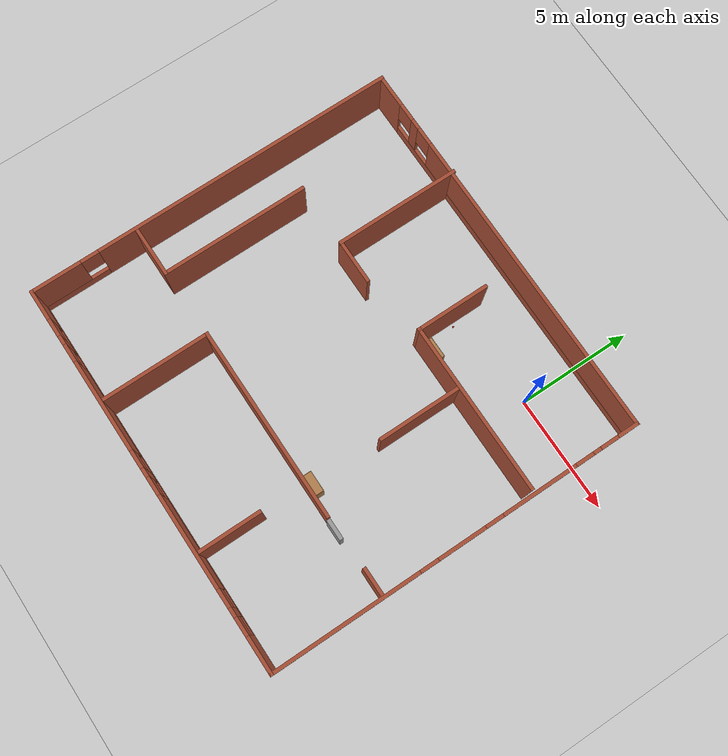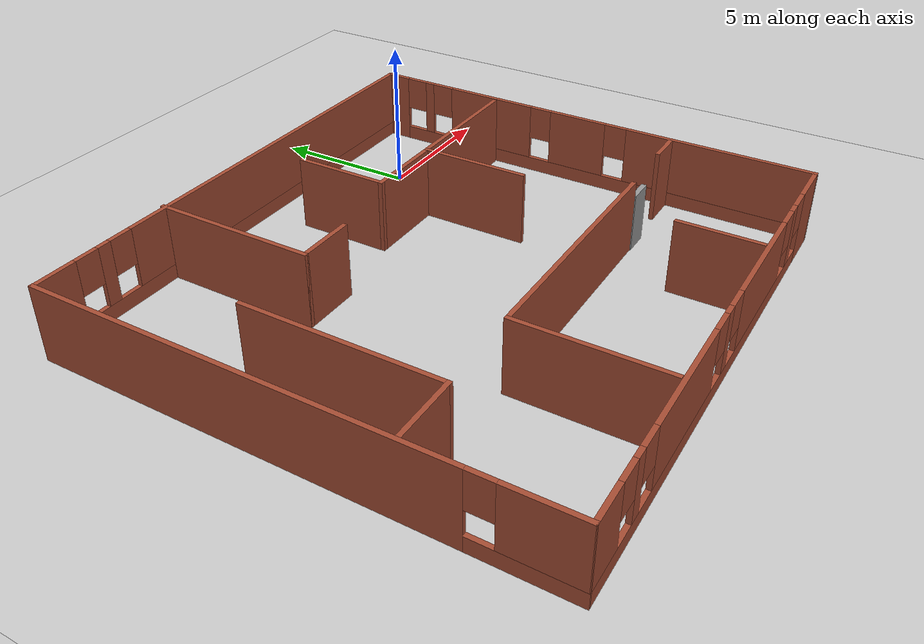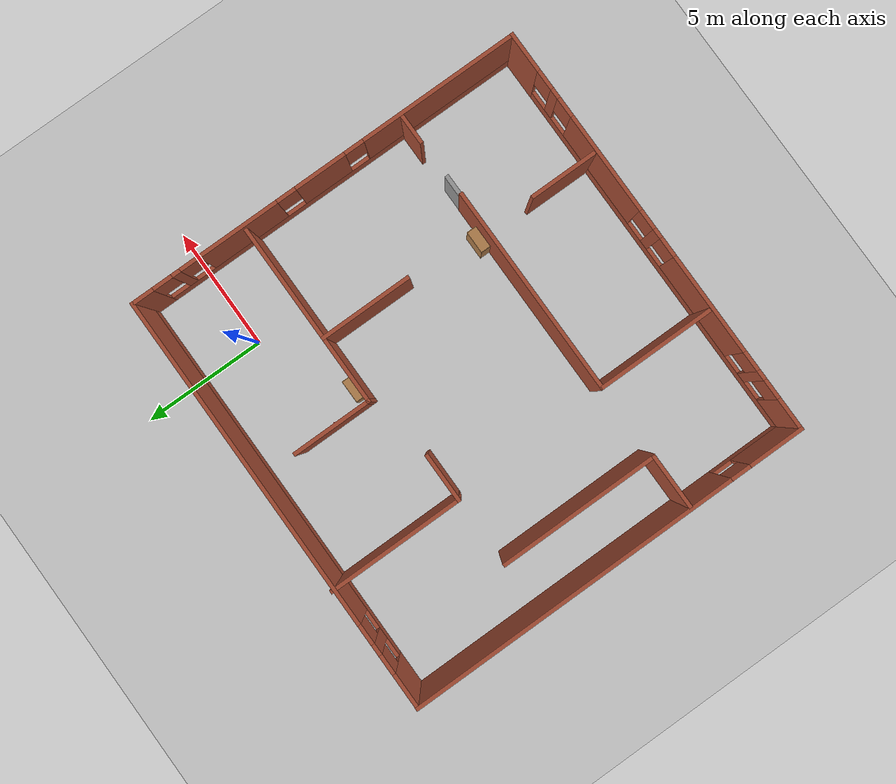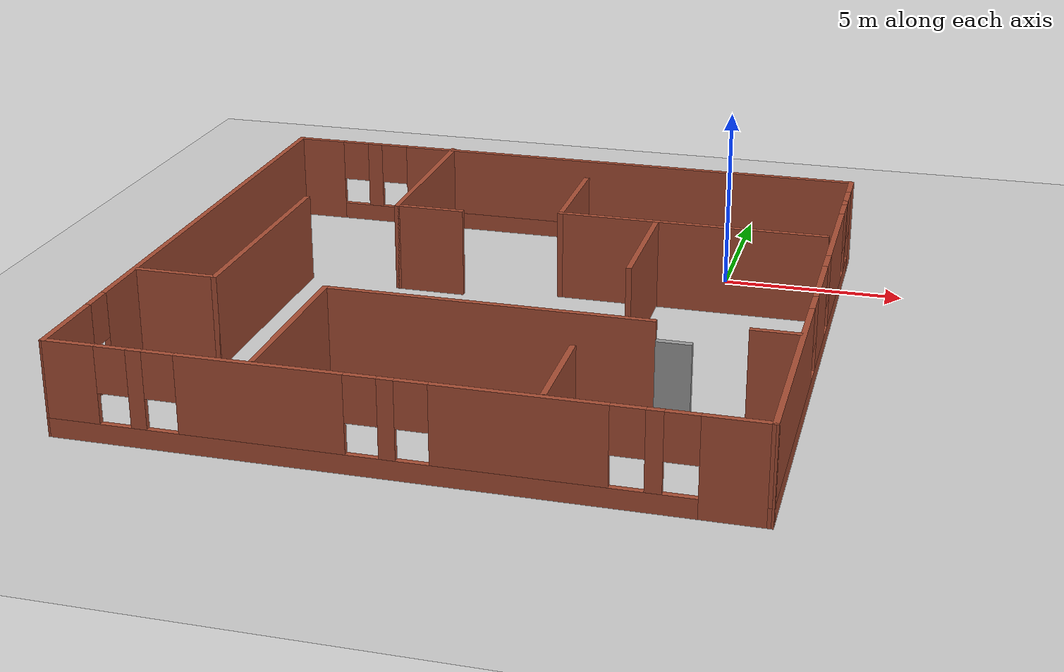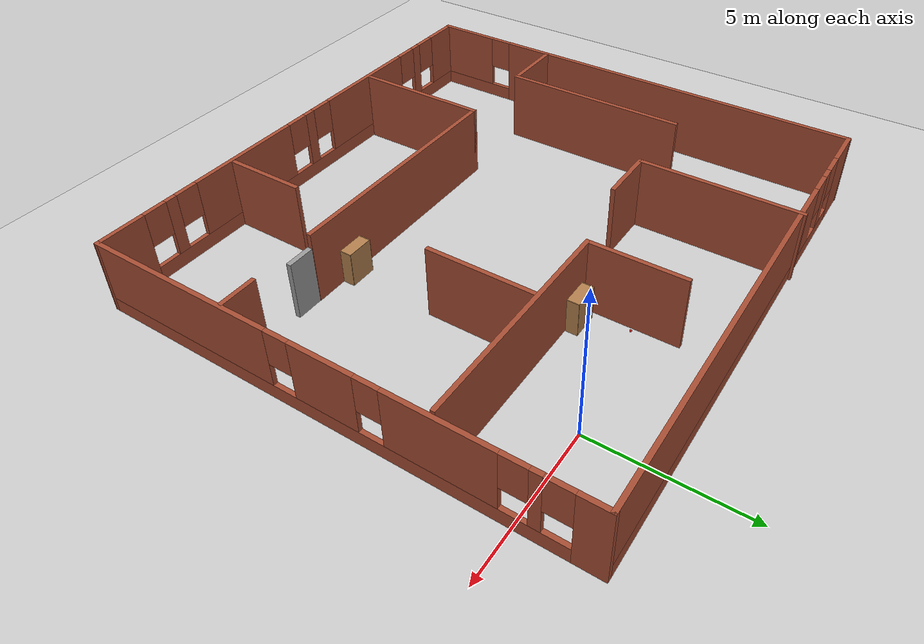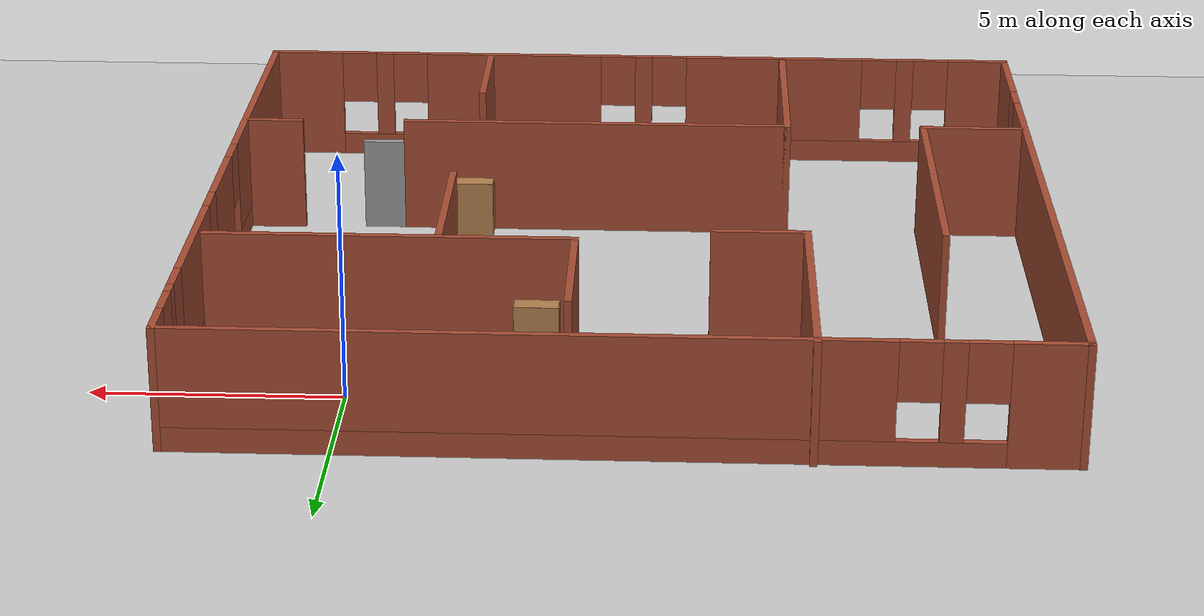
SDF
<sdf version="1.7">
 <world name="default">
  <light name="sun" type="directional">
   <pose>0 0 10 0 -0 0</pose>
   <diffuse>0.8 0.8 0.8 1</diffuse>
   <specular>0.2 0.2 0.2 1</specular>
   <attenuation>
    <range>1000</range>
    <constant>0.9</constant>
    <linear>0.01</linear>
    <quadratic>0.001</quadratic>
   </attenuation>
   <direction>-0.5 0.1 -0.9</direction>
   <spot><inner_angle>0</inner_angle><outer_angle>0</outer_angle><falloff>0</falloff></spot>
  </light>
  <gravity>0 0 -9.8</gravity>
  <magnetic_field>6e-06 2.3e-05 -4.2e-05</magnetic_field>
  <atmosphere type="adiabatic"/>
  <physics type="ode">
   <max_step_size>0.001</max_step_size>
   <real_time_factor>1</real_time_factor>
   <real_time_update_rate>1000</real_time_update_rate>
  </physics>
  <scene><ambient>0.4 0.4 0.4 1</ambient><background>0.7 0.7 0.7 1</background><shadows>1</shadows></scene>
  <audio><device>default</device></audio>
  <spherical_coordinates>
   <surface_model>EARTH_WGS84</surface_model>
   <latitude_deg>0</latitude_deg>
   <longitude_deg>0</longitude_deg>
   <elevation>0</elevation>
   <heading_deg>0</heading_deg>
  </spherical_coordinates>
  <model name="house">
   <pose>-5.33863 -5.68981 0 0 -0 0</pose>
   <link name="Door_0">
    <collision name="Door_0_Collision">
     <geometry><box><size>0.9 0.17 2</size></box></geometry>
     <pose>0 0 1 0 -0 0</pose>
    </collision>
    <visual name="Door_0_Visual">
     <pose>0 0 1 0 -0 0</pose>
     <geometry><box><size>0.9 0.17 2</size></box></geometry>
     <material>
      <script><uri>file://media/materials/scripts/gazebo.material</uri><name>Gazebo/Grey</name></script>
     </material>
    </visual>
    <pose>5.4969 -3.46946 0 0 -0 0</pose>
   </link>
   <link name="Wall_0">
    <pose>-8.55105 -0.029821 0 0 -0 -1.5708</pose>
    <visual name="Wall_0_Visual_0">
     <pose>-1.53541 0 1.25 0 -0 0</pose>
     <geometry><box><size>13.4292 0.15 2.5</size></box></geometry>
     <material>
      <script><uri>file://media/materials/scripts/gazebo.material</uri><name>Gazebo/Bricks</name></script>
      <ambient>1 1 1 1</ambient>
     </material>
     <meta><layer>0</layer></meta>
    </visual>
    <collision name="Wall_0_Collision_0">
     <geometry><box><size>13.4292 0.15 2.5</size></box></geometry>
     <pose>-1.53541 0 1.25 0 -0 0</pose>
    </collision>
    <visual name="Wall_0_Visual_1">
     <pose>6.71459 0 0.25 0 -0 0</pose>
     <geometry><box><size>3.07082 0.15 0.5</size></box></geometry>
     <material>
      <script><uri>file://media/materials/scripts/gazebo.material</uri><name>Gazebo/Bricks</name></script>
      <ambient>1 1 1 1</ambient>
     </material>
     <meta><layer>0</layer></meta>
    </visual>
    <collision name="Wall_0_Collision_1">
     <geometry><box><size>3.07082 0.15 0.5</size></box></geometry>
     <pose>6.71459 0 0.25 0 -0 0</pose>
    </collision>
    <visual name="Wall_0_Visual_2">
     <pose>7.11459 0 1.5 0 -0 0</pose>
     <geometry><box><size>2.27082 0.15 2</size></box></geometry>
     <material>
      <script><uri>file://media/materials/scripts/gazebo.material</uri><name>Gazebo/Bricks</name></script>
      <ambient>1 1 1 1</ambient>
     </material>
     <meta><layer>0</layer></meta>
    </visual>
    <collision name="Wall_0_Collision_2">
     <geometry><box><size>2.27082 0.15 2</size></box></geometry>
     <pose>7.11459 0 1.5 0 -0 0</pose>
    </collision>
    <visual name="Wall_0_Visual_3">
     <pose>5.57918 0 1.9 0 -0 0</pose>
     <geometry><box><size>0.8 0.15 1.2</size></box></geometry>
     <material>
      <script><uri>file://media/materials/scripts/gazebo.material</uri><name>Gazebo/Bricks</name></script>
      <ambient>1 1 1 1</ambient>
     </material>
     <meta><layer>0</layer></meta>
    </visual>
    <collision name="Wall_0_Collision_3">
     <geometry><box><size>0.8 0.15 1.2</size></box></geometry>
     <pose>5.57918 0 1.9 0 -0 0</pose>
    </collision>
   </link>
   <link name="Wall_11">
    <collision name="Wall_11_Collision">
     <geometry><box><size>2.75 0.15 2.5</size></box></geometry>
     <pose>0 0 1.25 0 -0 0</pose>
    </collision>
    <visual name="Wall_11_Visual">
     <pose>0 0 1.25 0 -0 0</pose>
     <geometry><box><size>2.75 0.15 2.5</size></box></geometry>
     <material>
      <script><uri>file://media/materials/scripts/gazebo.material</uri><name>Gazebo/Bricks</name></script>
      <ambient>1 1 1 1</ambient>
     </material>
     <meta><layer>0</layer></meta>
    </visual>
    <pose>3.45894 -6.74753 0 0 -0 1.5708</pose>
   </link>
   <link name="Wall_13">
    <collision name="Wall_13_Collision">
     <geometry><box><size>2.25 0.15 2.5</size></box></geometry>
     <pose>0 0 1.25 0 -0 0</pose>
    </collision>
    <visual name="Wall_13_Visual">
     <pose>0 0 1.25 0 -0 0</pose>
     <geometry><box><size>2.25 0.15 2.5</size></box></geometry>
     <material>
      <script><uri>file://media/materials/scripts/gazebo.material</uri><name>Gazebo/Bricks</name></script>
      <ambient>1 1 1 1</ambient>
     </material>
     <meta><layer>0</layer></meta>
    </visual>
    <pose>-7.38906 -3.49353 0 0 -0 3.14159</pose>
   </link>
   <link name="Wall_18">
    <collision name="Wall_18_Collision">
     <geometry><box><size>1.25 0.15 2.5</size></box></geometry>
     <pose>0 0 1.25 0 -0 0</pose>
    </collision>
    <visual name="Wall_18_Visual">
     <pose>0 0 1.25 0 -0 0</pose>
     <geometry><box><size>1.25 0.15 2.5</size></box></geometry>
     <material>
      <script><uri>file://media/materials/scripts/gazebo.material</uri><name>Gazebo/Bricks</name></script>
      <ambient>1 1 1 1</ambient>
     </material>
     <meta><layer>0</layer></meta>
    </visual>
    <pose>7.89518 -3.36552 0 0 -0 3.14159</pose>
   </link>
   <link name="Wall_20">
    <collision name="Wall_20_Collision">
     <geometry><box><size>7.5 0.15 2.5</size></box></geometry>
     <pose>0 0 1.25 0 -0 0</pose>
    </collision>
    <visual name="Wall_20_Visual">
     <pose>0 0 1.25 0 -0 0</pose>
     <geometry><box><size>7.5 0.15 2.5</size></box></geometry>
     <material>
      <script><uri>file://media/materials/scripts/gazebo.material</uri><name>Gazebo/Bricks</name></script>
      <ambient>1 1 1 1</ambient>
     </material>
     <meta><layer>0</layer></meta>
    </visual>
    <pose>4.66583 3.41708 0 0 -0 3.14159</pose>
   </link>
   <link name="Wall_21">
    <collision name="Wall_21_Collision">
     <geometry><box><size>3.25 0.15 2.5</size></box></geometry>
     <pose>0 0 1.25 0 -0 0</pose>
    </collision>
    <visual name="Wall_21_Visual">
     <pose>0 0 1.25 0 -0 0</pose>
     <geometry><box><size>3.25 0.15 2.5</size></box></geometry>
     <material>
      <script><uri>file://media/materials/scripts/gazebo.material</uri><name>Gazebo/Bricks</name></script>
      <ambient>1 1 1 1</ambient>
     </material>
     <meta><layer>0</layer></meta>
    </visual>
    <pose>0.990832 4.96708 0 0 -0 1.5708</pose>
   </link>
   <link name="Wall_23">
    <collision name="Wall_23_Collision">
     <geometry><box><size>5.5 0.15 2.5</size></box></geometry>
     <pose>0 0 1.25 0 -0 0</pose>
    </collision>
    <visual name="Wall_23_Visual">
     <pose>0 0 1.25 0 -0 0</pose>
     <geometry><box><size>5.5 0.15 2.5</size></box></geometry>
     <material>
      <script><uri>file://media/materials/scripts/gazebo.material</uri><name>Gazebo/Bricks</name></script>
      <ambient>1 1 1 1</ambient>
     </material>
     <meta><layer>0</layer></meta>
    </visual>
    <pose>-3.60699 5.54208 0 0 -0 -1.5708</pose>
   </link>
   <link name="Wall_24">
    <collision name="Wall_24_Collision">
     <geometry><box><size>2 0.15 2.5</size></box></geometry>
     <pose>0 0 1.25 0 -0 0</pose>
    </collision>
    <visual name="Wall_24_Visual">
     <pose>0 0 1.25 0 -0 0</pose>
     <geometry><box><size>2 0.15 2.5</size></box></geometry>
     <material>
      <script><uri>file://media/materials/scripts/gazebo.material</uri><name>Gazebo/Bricks</name></script>
      <ambient>1 1 1 1</ambient>
     </material>
     <meta><layer>0</layer></meta>
    </visual>
    <pose>-2.68199 2.86708 0 0 -0 0</pose>
   </link>
   <link name="Wall_26">
    <collision name="Wall_26_Collision">
     <geometry><box><size>6.5 0.15 2.5</size></box></geometry>
     <pose>0 0 1.25 0 -0 0</pose>
    </collision>
    <visual name="Wall_26_Visual">
     <pose>0 0 1.25 0 -0 0</pose>
     <geometry><box><size>6.5 0.15 2.5</size></box></geometry>
     <material>
      <script><uri>file://media/materials/scripts/gazebo.material</uri><name>Gazebo/Bricks</name></script>
      <ambient>1 1 1 1</ambient>
     </material>
     <meta><layer>0</layer></meta>
    </visual>
    <pose>-6.33906 -0.318534 0 0 -0 1.5708</pose>
   </link>
   <link name="Wall_28">
    <collision name="Wall_28_Collision">
     <geometry><box><size>3.75 0.15 2.5</size></box></geometry>
     <pose>0 0 1.25 0 -0 0</pose>
    </collision>
    <visual name="Wall_28_Visual">
     <pose>0 0 1.25 0 -0 0</pose>
     <geometry><box><size>3.75 0.15 2.5</size></box></geometry>
     <material>
      <script><uri>file://media/materials/scripts/gazebo.material</uri><name>Gazebo/Bricks</name></script>
      <ambient>1 1 1 1</ambient>
     </material>
     <meta><layer>0</layer></meta>
    </visual>
    <pose>3.69735 1.61708 0 0 -0 -1.5708</pose>
   </link>
   <link name="Wall_3">
    <pose>0.001046 8.13297 0 0 -0 0</pose>
    <visual name="Wall_3_Visual_0">
     <pose>-7.88174 0 1.25 0 -0 0</pose>
     <geometry><box><size>1.48653 0.15 2.5</size></box></geometry>
     <material>
      <script><uri>file://media/materials/scripts/gazebo.material</uri><name>Gazebo/Bricks</name></script>
      <ambient>1 1 1 1</ambient>
     </material>
     <meta><layer>0</layer></meta>
    </visual>
    <collision name="Wall_3_Collision_0">
     <geometry><box><size>1.48653 0.15 2.5</size></box></geometry>
     <pose>-7.88174 0 1.25 0 -0 0</pose>
    </collision>
    <visual name="Wall_3_Visual_1">
     <pose>0.743262 0 0.25 0 -0 0</pose>
     <geometry><box><size>15.7635 0.15 0.5</size></box></geometry>
     <material>
      <script><uri>file://media/materials/scripts/gazebo.material</uri><name>Gazebo/Bricks</name></script>
      <ambient>1 1 1 1</ambient>
     </material>
     <meta><layer>0</layer></meta>
    </visual>
    <collision name="Wall_3_Collision_1">
     <geometry><box><size>15.7635 0.15 0.5</size></box></geometry>
     <pose>0.743262 0 0.25 0 -0 0</pose>
    </collision>
    <visual name="Wall_3_Visual_2">
     <pose>-6.11239 0 1.5 0 -0 0</pose>
     <geometry><box><size>0.452174 0.15 2</size></box></geometry>
     <material>
      <script><uri>file://media/materials/scripts/gazebo.material</uri><name>Gazebo/Bricks</name></script>
      <ambient>1 1 1 1</ambient>
     </material>
     <meta><layer>0</layer></meta>
    </visual>
    <collision name="Wall_3_Collision_2">
     <geometry><box><size>0.452174 0.15 2</size></box></geometry>
     <pose>-6.11239 0 1.5 0 -0 0</pose>
    </collision>
    <visual name="Wall_3_Visual_3">
     <pose>1.76935 0 1.5 0 -0 0</pose>
     <geometry><box><size>13.7113 0.15 2</size></box></geometry>
     <material>
      <script><uri>file://media/materials/scripts/gazebo.material</uri><name>Gazebo/Bricks</name></script>
      <ambient>1 1 1 1</ambient>
     </material>
     <meta><layer>0</layer></meta>
    </visual>
    <collision name="Wall_3_Collision_3">
     <geometry><box><size>13.7113 0.15 2</size></box></geometry>
     <pose>1.76935 0 1.5 0 -0 0</pose>
    </collision>
    <visual name="Wall_3_Visual_4">
     <pose>-6.73848 0 1.9 0 -0 0</pose>
     <geometry><box><size>0.8 0.15 1.2</size></box></geometry>
     <material>
      <script><uri>file://media/materials/scripts/gazebo.material</uri><name>Gazebo/Bricks</name></script>
      <ambient>1 1 1 1</ambient>
     </material>
     <meta><layer>0</layer></meta>
    </visual>
    <collision name="Wall_3_Collision_4">
     <geometry><box><size>0.8 0.15 1.2</size></box></geometry>
     <pose>-6.73848 0 1.9 0 -0 0</pose>
    </collision>
    <visual name="Wall_3_Visual_5">
     <pose>-5.4863 0 1.9 0 -0 0</pose>
     <geometry><box><size>0.8 0.15 1.2</size></box></geometry>
     <material>
      <script><uri>file://media/materials/scripts/gazebo.material</uri><name>Gazebo/Bricks</name></script>
      <ambient>1 1 1 1</ambient>
     </material>
     <meta><layer>0</layer></meta>
    </visual>
    <collision name="Wall_3_Collision_5">
     <geometry><box><size>0.8 0.15 1.2</size></box></geometry>
     <pose>-5.4863 0 1.9 0 -0 0</pose>
    </collision>
   </link>
   <link name="Wall_5">
    <pose>8.55105 -0.04203 0 0 -0 -1.5708</pose>
    <visual name="Wall_5_Visual_0">
     <pose>-7.7763 0 1.25 0 -0 0</pose>
     <geometry><box><size>0.947407 0.15 2.5</size></box></geometry>
     <material>
      <script><uri>file://media/materials/scripts/gazebo.material</uri><name>Gazebo/Bricks</name></script>
      <ambient>1 1 1 1</ambient>
     </material>
     <meta><layer>0</layer></meta>
    </visual>
    <collision name="Wall_5_Collision_0">
     <geometry><box><size>0.947407 0.15 2.5</size></box></geometry>
     <pose>-7.7763 0 1.25 0 -0 0</pose>
    </collision>
    <visual name="Wall_5_Visual_1">
     <pose>0.473704 0 0.25 0 -0 0</pose>
     <geometry><box><size>15.5526 0.15 0.5</size></box></geometry>
     <material>
      <script><uri>file://media/materials/scripts/gazebo.material</uri><name>Gazebo/Bricks</name></script>
      <ambient>1 1 1 1</ambient>
     </material>
     <meta><layer>0</layer></meta>
    </visual>
    <collision name="Wall_5_Collision_1">
     <geometry><box><size>15.5526 0.15 0.5</size></box></geometry>
     <pose>0.473704 0 0.25 0 -0 0</pose>
    </collision>
    <visual name="Wall_5_Visual_2">
     <pose>-6.32868 0 1.5 0 -0 0</pose>
     <geometry><box><size>0.347826 0.15 2</size></box></geometry>
     <material>
      <script><uri>file://media/materials/scripts/gazebo.material</uri><name>Gazebo/Bricks</name></script>
      <ambient>1 1 1 1</ambient>
     </material>
     <meta><layer>0</layer></meta>
    </visual>
    <collision name="Wall_5_Collision_2">
     <geometry><box><size>0.347826 0.15 2</size></box></geometry>
     <pose>-6.32868 0 1.5 0 -0 0</pose>
    </collision>
    <visual name="Wall_5_Visual_3">
     <pose>-3.6856 0 1.5 0 -0 0</pose>
     <geometry><box><size>3.33834 0.15 2</size></box></geometry>
     <material>
      <script><uri>file://media/materials/scripts/gazebo.material</uri><name>Gazebo/Bricks</name></script>
      <ambient>1 1 1 1</ambient>
     </material>
     <meta><layer>0</layer></meta>
    </visual>
    <collision name="Wall_5_Collision_3">
     <geometry><box><size>3.33834 0.15 2</size></box></geometry>
     <pose>-3.6856 0 1.5 0 -0 0</pose>
    </collision>
    <visual name="Wall_5_Visual_4">
     <pose>-0.158458 0 1.5 0 -0 0</pose>
     <geometry><box><size>2.11594 0.15 2</size></box></geometry>
     <material>
      <script><uri>file://media/materials/scripts/gazebo.material</uri><name>Gazebo/Bricks</name></script>
      <ambient>1 1 1 1</ambient>
     </material>
     <meta><layer>0</layer></meta>
    </visual>
    <collision name="Wall_5_Collision_4">
     <geometry><box><size>2.11594 0.15 2</size></box></geometry>
     <pose>-0.158458 0 1.5 0 -0 0</pose>
    </collision>
    <visual name="Wall_5_Visual_5">
     <pose>4.97476 0 1.5 0 -0 0</pose>
     <geometry><box><size>6.55049 0.15 2</size></box></geometry>
     <material>
      <script><uri>file://media/materials/scripts/gazebo.material</uri><name>Gazebo/Bricks</name></script>
      <ambient>1 1 1 1</ambient>
     </material>
     <meta><layer>0</layer></meta>
    </visual>
    <collision name="Wall_5_Collision_5">
     <geometry><box><size>6.55049 0.15 2</size></box></geometry>
     <pose>4.97476 0 1.5 0 -0 0</pose>
    </collision>
    <visual name="Wall_5_Visual_6">
     <pose>-6.90259 0 1.9 0 -0 0</pose>
     <geometry><box><size>0.8 0.15 1.2</size></box></geometry>
     <material>
      <script><uri>file://media/materials/scripts/gazebo.material</uri><name>Gazebo/Bricks</name></script>
      <ambient>1 1 1 1</ambient>
     </material>
     <meta><layer>0</layer></meta>
    </visual>
    <collision name="Wall_5_Collision_6">
     <geometry><box><size>0.8 0.15 1.2</size></box></geometry>
     <pose>-6.90259 0 1.9 0 -0 0</pose>
    </collision>
    <visual name="Wall_5_Visual_7">
     <pose>-5.75477 0 1.9 0 -0 0</pose>
     <geometry><box><size>0.8 0.15 1.2</size></box></geometry>
     <material>
      <script><uri>file://media/materials/scripts/gazebo.material</uri><name>Gazebo/Bricks</name></script>
      <ambient>1 1 1 1</ambient>
     </material>
     <meta><layer>0</layer></meta>
    </visual>
    <collision name="Wall_5_Collision_7">
     <geometry><box><size>0.8 0.15 1.2</size></box></geometry>
     <pose>-5.75477 0 1.9 0 -0 0</pose>
    </collision>
    <visual name="Wall_5_Visual_8">
     <pose>-1.61643 0 1.9 0 -0 0</pose>
     <geometry><box><size>0.8 0.15 1.2</size></box></geometry>
     <material>
      <script><uri>file://media/materials/scripts/gazebo.material</uri><name>Gazebo/Bricks</name></script>
      <ambient>1 1 1 1</ambient>
     </material>
     <meta><layer>0</layer></meta>
    </visual>
    <collision name="Wall_5_Collision_8">
     <geometry><box><size>0.8 0.15 1.2</size></box></geometry>
     <pose>-1.61643 0 1.9 0 -0 0</pose>
    </collision>
    <visual name="Wall_5_Visual_9">
     <pose>1.29951 0 1.9 0 -0 0</pose>
     <geometry><box><size>0.8 0.15 1.2</size></box></geometry>
     <material>
      <script><uri>file://media/materials/scripts/gazebo.material</uri><name>Gazebo/Bricks</name></script>
      <ambient>1 1 1 1</ambient>
     </material>
     <meta><layer>0</layer></meta>
    </visual>
    <collision name="Wall_5_Collision_9">
     <geometry><box><size>0.8 0.15 1.2</size></box></geometry>
     <pose>1.29951 0 1.9 0 -0 0</pose>
    </collision>
   </link>
   <link name="Wall_6">
    <pose>0 -8.21093 0 0 -0 3.14088</pose>
    <visual name="Wall_6_Visual_0">
     <pose>-7.79652 0 1.25 0 -0 0</pose>
     <geometry><box><size>1.65905 0.15 2.5</size></box></geometry>
     <material>
      <script><uri>file://media/materials/scripts/gazebo.material</uri><name>Gazebo/Bricks</name></script>
      <ambient>1 1 1 1</ambient>
     </material>
     <meta><layer>0</layer></meta>
    </visual>
    <collision name="Wall_6_Collision_0">
     <geometry><box><size>1.65905 0.15 2.5</size></box></geometry>
     <pose>-7.79652 0 1.25 0 -0 0</pose>
    </collision>
    <visual name="Wall_6_Visual_1">
     <pose>0.829526 0 0.25 0 -0 0</pose>
     <geometry><box><size>15.593 0.15 0.5</size></box></geometry>
     <material>
      <script><uri>file://media/materials/scripts/gazebo.material</uri><name>Gazebo/Bricks</name></script>
      <ambient>1 1 1 1</ambient>
     </material>
     <meta><layer>0</layer></meta>
    </visual>
    <collision name="Wall_6_Collision_1">
     <geometry><box><size>15.593 0.15 0.5</size></box></geometry>
     <pose>0.829526 0 0.25 0 -0 0</pose>
    </collision>
    <visual name="Wall_6_Visual_2">
     <pose>-5.96694 0 1.5 0 -0 0</pose>
     <geometry><box><size>0.400112 0.15 2</size></box></geometry>
     <material>
      <script><uri>file://media/materials/scripts/gazebo.material</uri><name>Gazebo/Bricks</name></script>
      <ambient>1 1 1 1</ambient>
     </material>
     <meta><layer>0</layer></meta>
    </visual>
    <collision name="Wall_6_Collision_2">
     <geometry><box><size>0.400112 0.15 2</size></box></geometry>
     <pose>-5.96694 0 1.5 0 -0 0</pose>
    </collision>
    <visual name="Wall_6_Visual_3">
     <pose>-2.91473 0 1.5 0 -0 0</pose>
     <geometry><box><size>4.10431 0.15 2</size></box></geometry>
     <material>
      <script><uri>file://media/materials/scripts/gazebo.material</uri><name>Gazebo/Bricks</name></script>
      <ambient>1 1 1 1</ambient>
     </material>
     <meta><layer>0</layer></meta>
    </visual>
    <collision name="Wall_6_Collision_3">
     <geometry><box><size>4.10431 0.15 2</size></box></geometry>
     <pose>-2.91473 0 1.5 0 -0 0</pose>
    </collision>
    <visual name="Wall_6_Visual_4">
     <pose>0.137443 0 1.5 0 -0 0</pose>
     <geometry><box><size>0.400037 0.15 2</size></box></geometry>
     <material>
      <script><uri>file://media/materials/scripts/gazebo.material</uri><name>Gazebo/Bricks</name></script>
      <ambient>1 1 1 1</ambient>
     </material>
     <meta><layer>0</layer></meta>
    </visual>
    <collision name="Wall_6_Collision_4">
     <geometry><box><size>0.400037 0.15 2</size></box></geometry>
     <pose>0.137443 0 1.5 0 -0 0</pose>
    </collision>
    <visual name="Wall_6_Visual_5">
     <pose>3.18963 0 1.5 0 -0 0</pose>
     <geometry><box><size>4.10435 0.15 2</size></box></geometry>
     <material>
      <script><uri>file://media/materials/scripts/gazebo.material</uri><name>Gazebo/Bricks</name></script>
      <ambient>1 1 1 1</ambient>
     </material>
     <meta><layer>0</layer></meta>
    </visual>
    <collision name="Wall_6_Collision_5">
     <geometry><box><size>4.10435 0.15 2</size></box></geometry>
     <pose>3.18963 0 1.5 0 -0 0</pose>
    </collision>
    <visual name="Wall_6_Visual_6">
     <pose>6.24173 0 1.5 0 -0 0</pose>
     <geometry><box><size>0.399851 0.15 2</size></box></geometry>
     <material>
      <script><uri>file://media/materials/scripts/gazebo.material</uri><name>Gazebo/Bricks</name></script>
      <ambient>1 1 1 1</ambient>
     </material>
     <meta><layer>0</layer></meta>
    </visual>
    <collision name="Wall_6_Collision_6">
     <geometry><box><size>0.399851 0.15 2</size></box></geometry>
     <pose>6.24173 0 1.5 0 -0 0</pose>
    </collision>
    <visual name="Wall_6_Visual_7">
     <pose>7.93385 0 1.5 0 -0 0</pose>
     <geometry><box><size>1.38439 0.15 2</size></box></geometry>
     <material>
      <script><uri>file://media/materials/scripts/gazebo.material</uri><name>Gazebo/Bricks</name></script>
      <ambient>1 1 1 1</ambient>
     </material>
     <meta><layer>0</layer></meta>
    </visual>
    <collision name="Wall_6_Collision_7">
     <geometry><box><size>1.38439 0.15 2</size></box></geometry>
     <pose>7.93385 0 1.5 0 -0 0</pose>
    </collision>
    <visual name="Wall_6_Visual_8">
     <pose>-6.567 0 1.9 0 -0 0</pose>
     <geometry><box><size>0.8 0.15 1.2</size></box></geometry>
     <material>
      <script><uri>file://media/materials/scripts/gazebo.material</uri><name>Gazebo/Bricks</name></script>
      <ambient>1 1 1 1</ambient>
     </material>
     <meta><layer>0</layer></meta>
    </visual>
    <collision name="Wall_6_Collision_8">
     <geometry><box><size>0.8 0.15 1.2</size></box></geometry>
     <pose>-6.567 0 1.9 0 -0 0</pose>
    </collision>
    <visual name="Wall_6_Visual_9">
     <pose>-5.36688 0 1.9 0 -0 0</pose>
     <geometry><box><size>0.8 0.15 1.2</size></box></geometry>
     <material>
      <script><uri>file://media/materials/scripts/gazebo.material</uri><name>Gazebo/Bricks</name></script>
      <ambient>1 1 1 1</ambient>
     </material>
     <meta><layer>0</layer></meta>
    </visual>
    <collision name="Wall_6_Collision_9">
     <geometry><box><size>0.8 0.15 1.2</size></box></geometry>
     <pose>-5.36688 0 1.9 0 -0 0</pose>
    </collision>
    <visual name="Wall_6_Visual_10">
     <pose>-0.462575 0 1.9 0 -0 0</pose>
     <geometry><box><size>0.8 0.15 1.2</size></box></geometry>
     <material>
      <script><uri>file://media/materials/scripts/gazebo.material</uri><name>Gazebo/Bricks</name></script>
      <ambient>1 1 1 1</ambient>
     </material>
     <meta><layer>0</layer></meta>
    </visual>
    <collision name="Wall_6_Collision_10">
     <geometry><box><size>0.8 0.15 1.2</size></box></geometry>
     <pose>-0.462575 0 1.9 0 -0 0</pose>
    </collision>
    <visual name="Wall_6_Visual_11">
     <pose>0.737462 0 1.9 0 -0 0</pose>
     <geometry><box><size>0.8 0.15 1.2</size></box></geometry>
     <material>
      <script><uri>file://media/materials/scripts/gazebo.material</uri><name>Gazebo/Bricks</name></script>
      <ambient>1 1 1 1</ambient>
     </material>
     <meta><layer>0</layer></meta>
    </visual>
    <collision name="Wall_6_Collision_11">
     <geometry><box><size>0.8 0.15 1.2</size></box></geometry>
     <pose>0.737462 0 1.9 0 -0 0</pose>
    </collision>
    <visual name="Wall_6_Visual_12">
     <pose>5.64181 0 1.9 0 -0 0</pose>
     <geometry><box><size>0.8 0.15 1.2</size></box></geometry>
     <material>
      <script><uri>file://media/materials/scripts/gazebo.material</uri><name>Gazebo/Bricks</name></script>
      <ambient>1 1 1 1</ambient>
     </material>
     <meta><layer>0</layer></meta>
    </visual>
    <collision name="Wall_6_Collision_12">
     <geometry><box><size>0.8 0.15 1.2</size></box></geometry>
     <pose>5.64181 0 1.9 0 -0 0</pose>
    </collision>
    <visual name="Wall_6_Visual_13">
     <pose>6.84166 0 1.9 0 -0 0</pose>
     <geometry><box><size>0.8 0.15 1.2</size></box></geometry>
     <material>
      <script><uri>file://media/materials/scripts/gazebo.material</uri><name>Gazebo/Bricks</name></script>
      <ambient>1 1 1 1</ambient>
     </material>
     <meta><layer>0</layer></meta>
    </visual>
    <collision name="Wall_6_Collision_13">
     <geometry><box><size>0.8 0.15 1.2</size></box></geometry>
     <pose>6.84166 0 1.9 0 -0 0</pose>
    </collision>
   </link>
   <link name="Wall_8">
    <collision name="Wall_8_Collision">
     <geometry><box><size>4.75 0.15 2.5</size></box></geometry>
     <pose>0 0 1.25 0 -0 0</pose>
    </collision>
    <visual name="Wall_8_Visual">
     <pose>0 0 1.25 0 -0 0</pose>
     <geometry><box><size>4.75 0.15 2.5</size></box></geometry>
     <material>
      <script><uri>file://media/materials/scripts/gazebo.material</uri><name>Gazebo/Bricks</name></script>
      <ambient>1 1 1 1</ambient>
     </material>
     <meta><layer>0</layer></meta>
    </visual>
    <pose>-3.37206 -5.74753 0 0 -0 1.5708</pose>
   </link>
   <link name="Wall_9">
    <collision name="Wall_9_Collision">
     <geometry><box><size>8.5 0.15 2.5</size></box></geometry>
     <pose>0 0 1.25 0 -0 0</pose>
    </collision>
    <visual name="Wall_9_Visual">
     <pose>0 0 1.25 0 -0 0</pose>
     <geometry><box><size>8.5 0.15 2.5</size></box></geometry>
     <material>
      <script><uri>file://media/materials/scripts/gazebo.material</uri><name>Gazebo/Bricks</name></script>
      <ambient>1 1 1 1</ambient>
     </material>
     <meta><layer>0</layer></meta>
    </visual>
    <pose>0.802941 -3.44753 0 0 -0 0</pose>
   </link>
   <static>1</static>
  </model>
  <model name="ground_plane">
   <static>1</static>
   <link name="link">
    <collision name="collision">
     <geometry><plane><normal>0 0 1</normal><size>100 100</size></plane></geometry>
     <surface><friction><ode><mu>100</mu><mu2>50</mu2></ode></friction></surface>
    </collision>
    <visual name="visual">
     <cast_shadows>0</cast_shadows>
     <geometry><plane><normal>0 0 1</normal><size>100 100</size></plane></geometry>
     <material>
      <script><uri>file://media/materials/scripts/gazebo.material</uri><name>Gazebo/Grey</name></script>
     </material>
    </visual>
   </link>
   <pose>-5.43979 -0.570811 0 0 -0 0</pose>
  </model>
  <model name="bookshelf">
   <static>1</static>
   <link name="link">
    <inertial><mass>1</mass></inertial>
    <collision name="back">
     <pose>0 0.005 0.6 0 -0 0</pose>
     <geometry><box><size>0.9 0.01 1.2</size></box></geometry>
    </collision>
    <visual name="visual1">
     <pose>0 0.005 0.6 0 -0 0</pose>
     <geometry><box><size>0.9 0.01 1.2</size></box></geometry>
     <material>
      <script><uri>file://media/materials/scripts/gazebo.material</uri><name>Gazebo/Wood</name></script>
     </material>
    </visual>
    <collision name="left_side">
     <pose>0.45 -0.195 0.6 0 -0 0</pose>
     <geometry><box><size>0.02 0.4 1.2</size></box></geometry>
    </collision>
    <visual name="visual2">
     <pose>0.45 -0.195 0.6 0 -0 0</pose>
     <geometry><box><size>0.02 0.4 1.2</size></box></geometry>
     <material>
      <script><uri>file://media/materials/scripts/gazebo.material</uri><name>Gazebo/Wood</name></script>
     </material>
    </visual>
    <collision name="right_side">
     <pose>-0.45 -0.195 0.6 0 -0 0</pose>
     <geometry><box><size>0.02 0.4 1.2</size></box></geometry>
    </collision>
    <visual name="visual3">
     <pose>-0.45 -0.195 0.6 0 -0 0</pose>
     <geometry><box><size>0.02 0.4 1.2</size></box></geometry>
     <material>
      <script><uri>file://media/materials/scripts/gazebo.material</uri><name>Gazebo/Wood</name></script>
     </material>
    </visual>
    <collision name="bottom">
     <pose>0 -0.195 0.03 0 -0 0</pose>
     <geometry><box><size>0.88 0.4 0.06</size></box></geometry>
    </collision>
    <visual name="visual4">
     <pose>0 -0.195 0.03 0 -0 0</pose>
     <geometry><box><size>0.88 0.4 0.06</size></box></geometry>
     <material>
      <script><uri>file://media/materials/scripts/gazebo.material</uri><name>Gazebo/Wood</name></script>
     </material>
    </visual>
    <collision name="top">
     <pose>0 -0.195 1.19 0 -0 0</pose>
     <geometry><box><size>0.88 0.4 0.02</size></box></geometry>
    </collision>
    <visual name="visual5">
     <pose>0 -0.195 1.19 0 -0 0</pose>
     <geometry><box><size>0.88 0.4 0.02</size></box></geometry>
     <material>
      <script><uri>file://media/materials/scripts/gazebo.material</uri><name>Gazebo/Wood</name></script>
     </material>
    </visual>
    <collision name="low_shelf">
     <pose>0 -0.195 0.43 0 -0 0</pose>
     <geometry><box><size>0.88 0.4 0.02</size></box></geometry>
    </collision>
    <visual name="visual6">
     <pose>0 -0.195 0.43 0 -0 0</pose>
     <geometry><box><size>0.88 0.4 0.02</size></box></geometry>
     <material>
      <script><uri>file://media/materials/scripts/gazebo.material</uri><name>Gazebo/Wood</name></script>
     </material>
    </visual>
    <collision name="high_shelf">
     <pose>0 -0.195 0.8 0 -0 0</pose>
     <geometry><box><size>0.88 0.4 0.02</size></box></geometry>
    </collision>
    <visual name="visual7">
     <pose>0 -0.195 0.8 0 -0 0</pose>
     <geometry><box><size>0.88 0.4 0.02</size></box></geometry>
     <material>
      <script><uri>file://media/materials/scripts/gazebo.material</uri><name>Gazebo/Wood</name></script>
     </material>
    </visual>
   </link>
   <pose>-3.59891 -1.79921 0 0 -0 0</pose>
  </model>
  <model name="cricket_ball">
   <link name="link">
    <pose>0 0 0.0375 0 -0 0</pose>
    <inertial>
     <mass>0.1467</mass>
     <inertia>
      <ixx>8.25187e-05</ixx>
      <ixy>0</ixy>
      <ixz>0</ixz>
      <iyy>8.25187e-05</iyy>
      <iyz>0</iyz>
      <izz>8.25187e-05</izz>
     </inertia>
    </inertial>
    <collision name="collision">
     <geometry><sphere><radius>0.0375</radius></sphere></geometry>
     <surface>
      <contact>
       <poissons_ratio>0.347</poissons_ratio>
       <elastic_modulus>8.8e+09</elastic_modulus>
       <ode><kp>100000</kp><kd>100</kd><max_vel>100</max_vel><min_depth>0.001</min_depth></ode>
      </contact>
      <friction>
       <torsional>
        <coefficient>1</coefficient>
        <use_patch_radius>0</use_patch_radius>
        <surface_radius>0.01</surface_radius>
       </torsional>
      </friction>
     </surface>
    </collision>
    <visual name="visual">
     <geometry><sphere><radius>0.0375</radius></sphere></geometry>
     <material>
      <script><uri>file://media/materials/scripts/gazebo.material</uri><name>Gazebo/Red</name></script>
     </material>
    </visual>
    <velocity_decay><linear>0</linear><angular>0.005</angular></velocity_decay>
   </link>
   <pose>-4.13267 -0.563512 -0.001014 0 -0 0</pose>
  </model>
  <model name="bookshelf_0">
   <static>1</static>
   <link name="link">
    <inertial><mass>1</mass></inertial>
    <collision name="back">
     <pose>0 0.005 0.6 0 -0 0</pose>
     <geometry><box><size>0.9 0.01 1.2</size></box></geometry>
    </collision>
    <visual name="visual1">
     <pose>0 0.005 0.6 0 -0 0</pose>
     <geometry><box><size>0.9 0.01 1.2</size></box></geometry>
     <material>
      <script><uri>file://media/materials/scripts/gazebo.material</uri><name>Gazebo/Wood</name></script>
     </material>
    </visual>
    <collision name="left_side">
     <pose>0.45 -0.195 0.6 0 -0 0</pose>
     <geometry><box><size>0.02 0.4 1.2</size></box></geometry>
    </collision>
    <visual name="visual2">
     <pose>0.45 -0.195 0.6 0 -0 0</pose>
     <geometry><box><size>0.02 0.4 1.2</size></box></geometry>
     <material>
      <script><uri>file://media/materials/scripts/gazebo.material</uri><name>Gazebo/Wood</name></script>
     </material>
    </visual>
    <collision name="right_side">
     <pose>-0.45 -0.195 0.6 0 -0 0</pose>
     <geometry><box><size>0.02 0.4 1.2</size></box></geometry>
    </collision>
    <visual name="visual3">
     <pose>-0.45 -0.195 0.6 0 -0 0</pose>
     <geometry><box><size>0.02 0.4 1.2</size></box></geometry>
     <material>
      <script><uri>file://media/materials/scripts/gazebo.material</uri><name>Gazebo/Wood</name></script>
     </material>
    </visual>
    <collision name="bottom">
     <pose>0 -0.195 0.03 0 -0 0</pose>
     <geometry><box><size>0.88 0.4 0.06</size></box></geometry>
    </collision>
    <visual name="visual4">
     <pose>0 -0.195 0.03 0 -0 0</pose>
     <geometry><box><size>0.88 0.4 0.06</size></box></geometry>
     <material>
      <script><uri>file://media/materials/scripts/gazebo.material</uri><name>Gazebo/Wood</name></script>
     </material>
    </visual>
    <collision name="top">
     <pose>0 -0.195 1.19 0 -0 0</pose>
     <geometry><box><size>0.88 0.4 0.02</size></box></geometry>
    </collision>
    <visual name="visual5">
     <pose>0 -0.195 1.19 0 -0 0</pose>
     <geometry><box><size>0.88 0.4 0.02</size></box></geometry>
     <material>
      <script><uri>file://media/materials/scripts/gazebo.material</uri><name>Gazebo/Wood</name></script>
     </material>
    </visual>
    <collision name="low_shelf">
     <pose>0 -0.195 0.43 0 -0 0</pose>
     <geometry><box><size>0.88 0.4 0.02</size></box></geometry>
    </collision>
    <visual name="visual6">
     <pose>0 -0.195 0.43 0 -0 0</pose>
     <geometry><box><size>0.88 0.4 0.02</size></box></geometry>
     <material>
      <script><uri>file://media/materials/scripts/gazebo.material</uri><name>Gazebo/Wood</name></script>
     </material>
    </visual>
    <collision name="high_shelf">
     <pose>0 -0.195 0.8 0 -0 0</pose>
     <geometry><box><size>0.88 0.4 0.02</size></box></geometry>
    </collision>
    <visual name="visual7">
     <pose>0 -0.195 0.8 0 -0 0</pose>
     <geometry><box><size>0.88 0.4 0.02</size></box></geometry>
     <material>
      <script><uri>file://media/materials/scripts/gazebo.material</uri><name>Gazebo/Wood</name></script>
     </material>
    </visual>
   </link>
   <pose>-1.81716 -8.66923 0 0 -0 0</pose>
  </model>
 </world>
</sdf>
